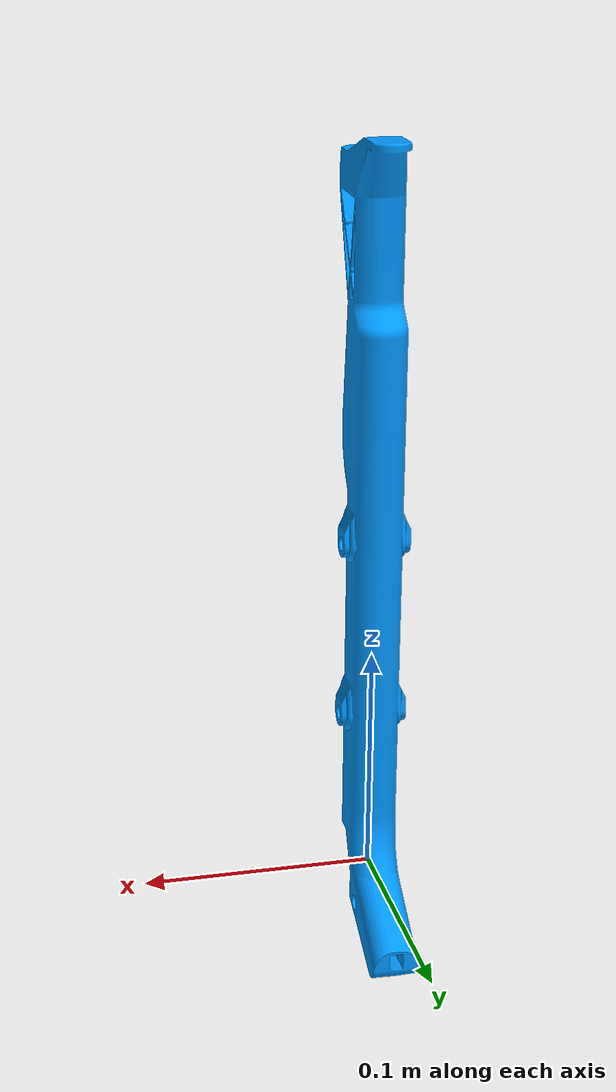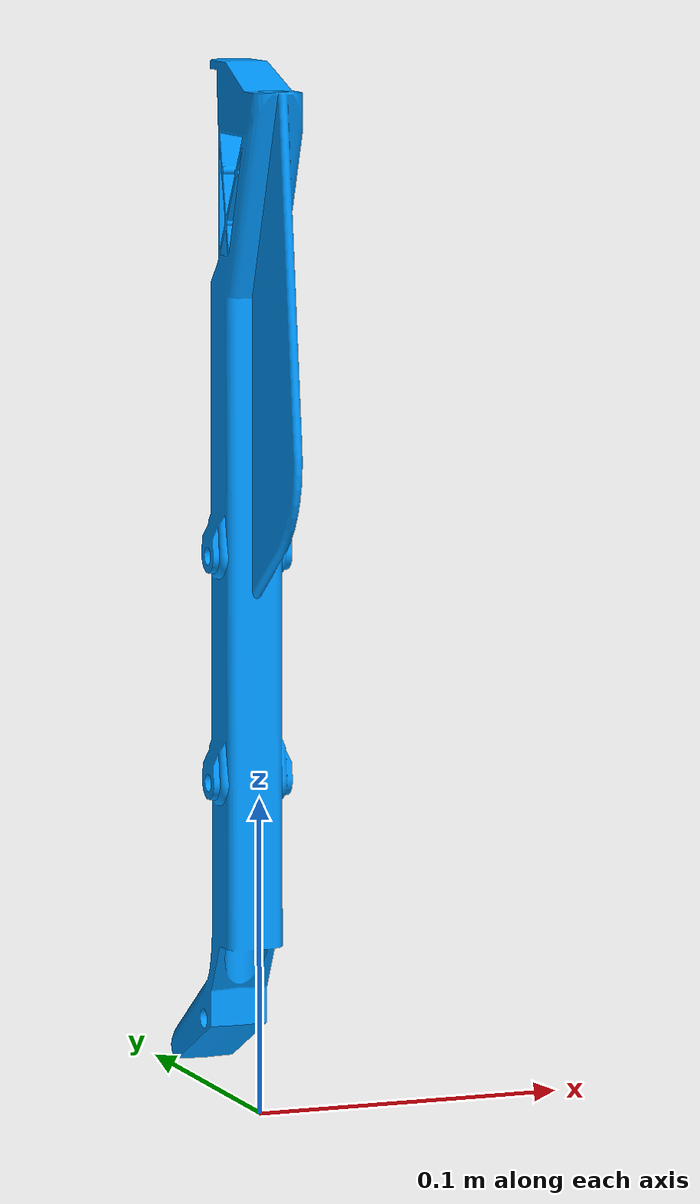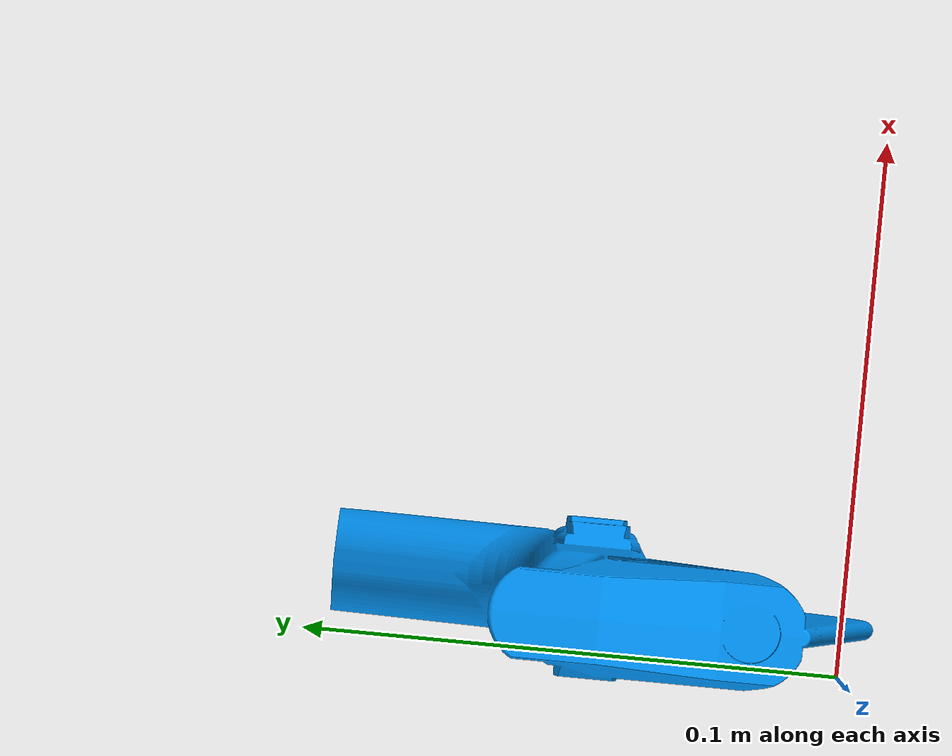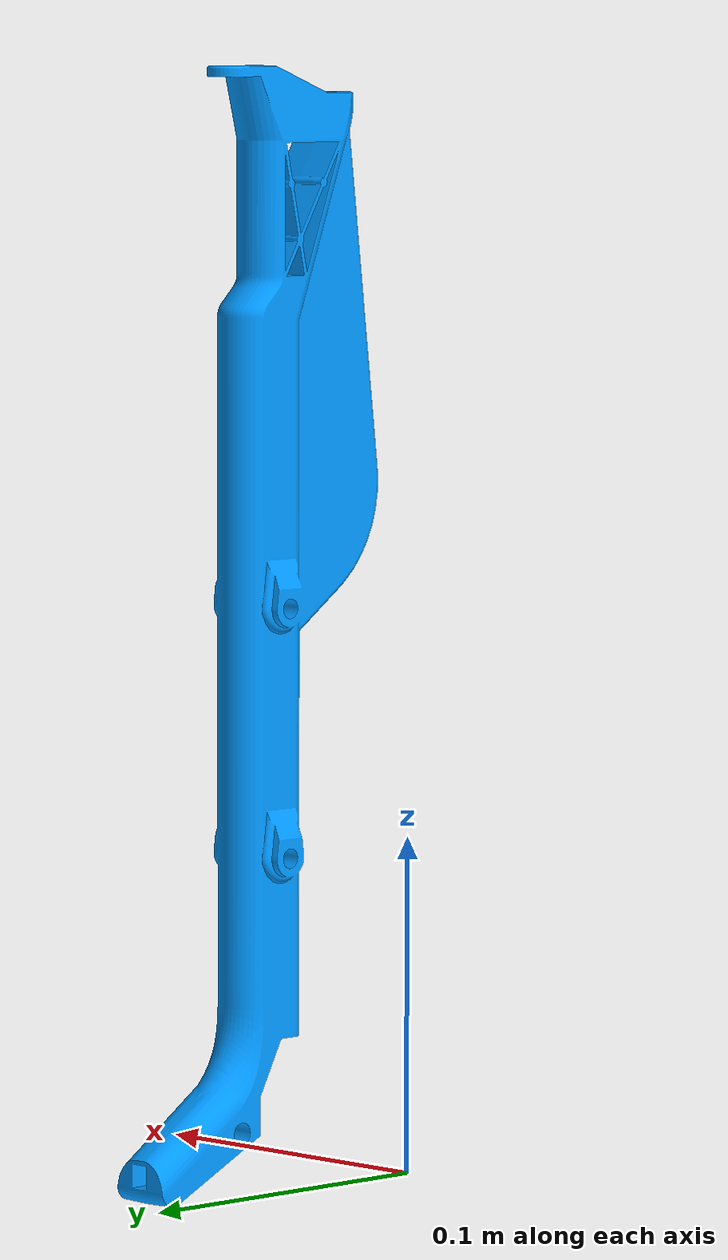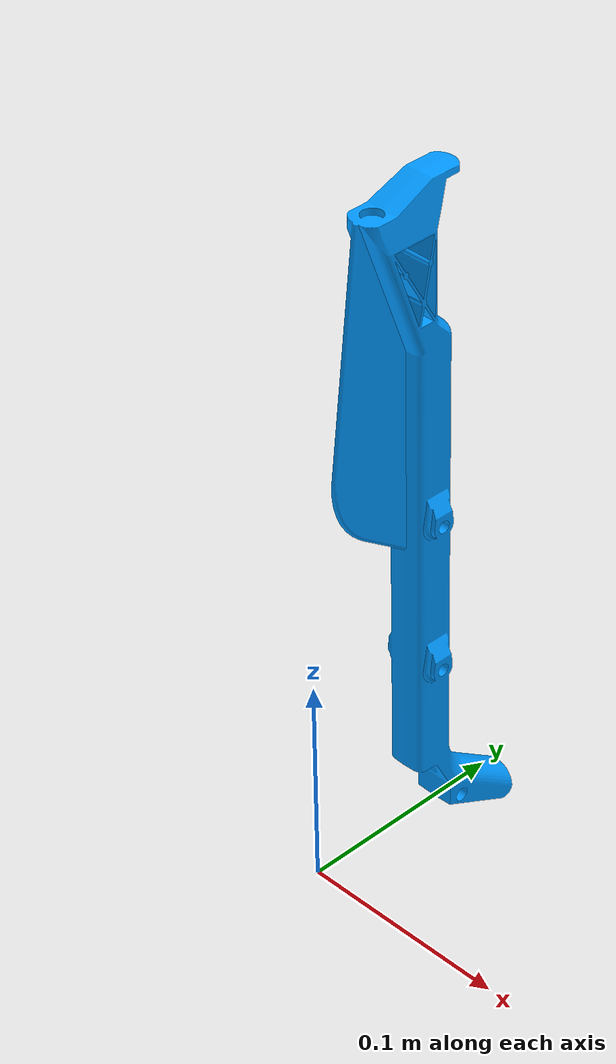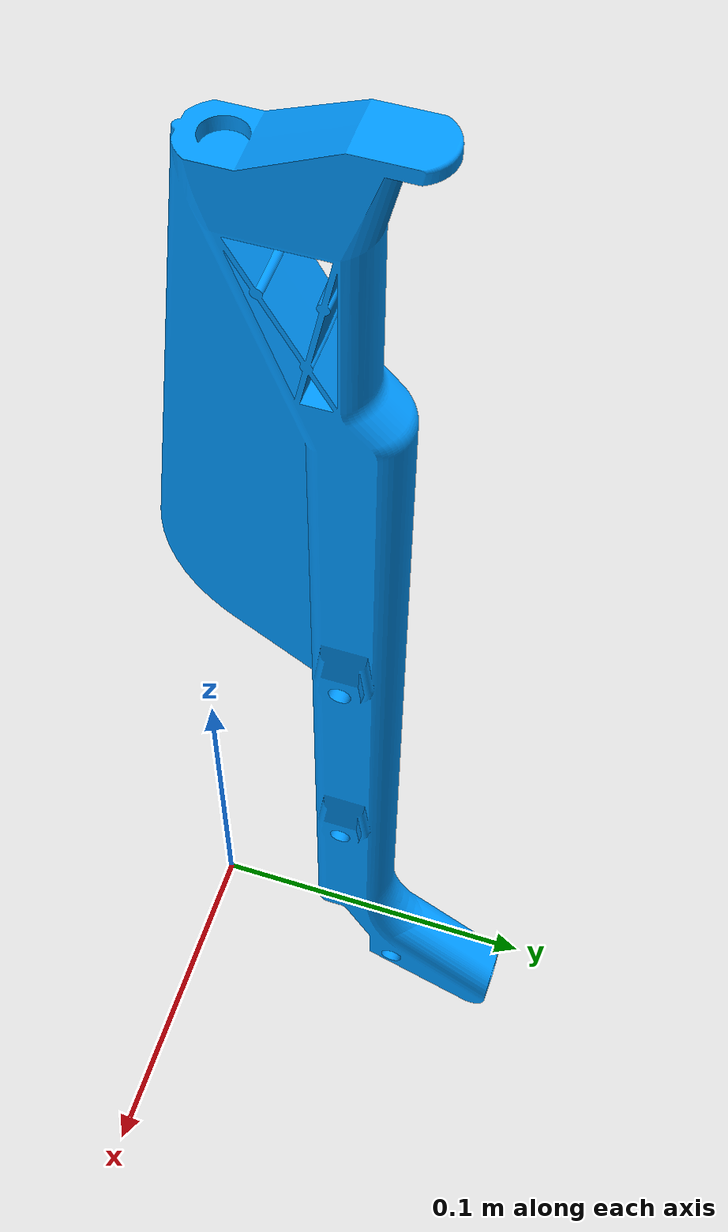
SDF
<sdf version='1.6'>
  <model name='Peg'>
    <link name='Peg'>
      <pose frame=''>0 0 0 0 -0 0</pose>
      <inertial>
        <pose frame=''>0 0 0 0 -0 0</pose>
        <mass>1</mass>
        <inertia>
          <ixx>.05</ixx>
          <ixy>0.01</ixy>
          <ixz>-0.01</ixz>
          <iyy>.05</iyy>
          <iyz>0.01</iyz>
          <izz>.05</izz>
        </inertia>
      </inertial>
      <collision name='Peg_collision'>
        <pose frame=''>0 0 0 0 -0 0</pose>
        <geometry>
          <mesh>
            <uri>model://Peg/meshes/peg.stl</uri>
            <scale>.001 .001 .001</scale>
          </mesh>
        </geometry>

      </collision>
      <visual name='Peg_visual'>
        <pose frame=''>0 0 0 0 -0 0</pose>
        <geometry>
          <mesh>
            <uri>model://Peg/meshes/peg.stl</uri>
            <scale>.001 .001 .001</scale>
          </mesh>
        </geometry>
	<material>
    		<ambient>0 0.6 1 1</ambient>
      		<diffuse>0 0.6 1 1</diffuse>
      		<specular>0 0.6 1 1</specular>
      		<emissive>0.0 0.0 0.0 0.0</emissive>
	</material>
      </visual>
    </link>
    <static>true</static>
  </model>
</sdf>
